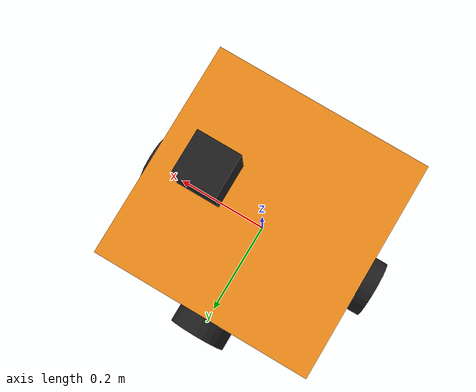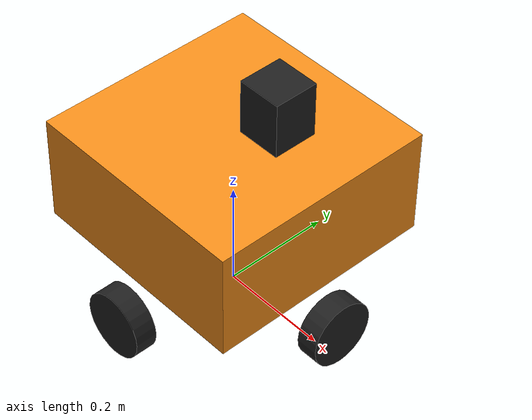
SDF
<sdf version='1.6'>
  <model name='justina_base'>
    <link name='base_link'>
      <pose frame=''>0 0 0 0 -0 0</pose>
      <inertial>
        <pose frame=''>0.002439 0 0.026585 0 -0 0</pose>
        <mass>4.1</mass>
        <inertia>
          <ixx>0.104757</ixx>
          <ixy>0</ixy>
          <ixz>-0.00413415</ixz>
          <iyy>0.105733</iyy>
          <iyz>0</iyz>
          <izz>0.148682</izz>
        </inertia>
      </inertial>
      <collision name='base_link_collision'>
        <pose frame=''>0 0 0.235 0 -0 0</pose>
        <geometry>
          <box>
            <size>0.42 0.42 0.2</size>
          </box>
        </geometry>
        <surface>
          <contact>
            <ode/>
          </contact>
          <friction>
            <ode/>
          </friction>
        </surface>
      </collision>
      <collision name='base_link_fixed_joint_lump__laser_link_collision_1'>
        <pose frame=''>0.1 0 0.44 0 -0 0</pose>
        <geometry>
          <box>
            <size>0.08 0.08 0.1</size>
          </box>
        </geometry>
        <surface>
          <contact>
            <ode/>
          </contact>
          <friction>
            <ode/>
          </friction>
        </surface>
      </collision>
      <collision name='base_link_fixed_joint_lump__wheel_back_collision_2'>
        <pose frame=''>-0.24 0 0.065 1.5708 -0 1.5708</pose>
        <geometry>
          <cylinder>
            <length>0.04</length>
            <radius>0.06</radius>
          </cylinder>
        </geometry>
        <surface>
          <contact>
            <ode/>
          </contact>
          <friction>
            <ode/>
          </friction>
        </surface>
      </collision>
      <collision name='base_link_fixed_joint_lump__wheel_front_collision_3'>
        <pose frame=''>0.24 0 0.065 1.5708 -0 1.5708</pose>
        <geometry>
          <cylinder>
            <length>0.04</length>
            <radius>0.06</radius>
          </cylinder>
        </geometry>
        <surface>
          <contact>
            <ode/>
          </contact>
          <friction>
            <ode/>
          </friction>
        </surface>
      </collision>
      <collision name='base_link_fixed_joint_lump__wheel_left_collision_4'>
        <pose frame=''>0 -0.24 0.065 1.5708 -0 0</pose>
        <geometry>
          <cylinder>
            <length>0.04</length>
            <radius>0.06</radius>
          </cylinder>
        </geometry>
        <surface>
          <contact>
            <ode/>
          </contact>
          <friction>
            <ode/>
          </friction>
        </surface>
      </collision>
      <collision name='base_link_fixed_joint_lump__wheel_right_collision_5'>
        <pose frame=''>0 0.24 0.065 1.5708 -0 0</pose>
        <geometry>
          <cylinder>
            <length>0.04</length>
            <radius>0.06</radius>
          </cylinder>
        </geometry>
        <surface>
          <contact>
            <ode/>
          </contact>
          <friction>
            <ode/>
          </friction>
        </surface>
      </collision>
      <visual name='base_link_visual'>
        <pose frame=''>0 0 0.235 0 -0 0</pose>
        <geometry>
          <box>
            <size>0.42 0.42 0.2</size>
          </box>
        </geometry>
        <material>
          <script>
            <name>Gazebo/Orange</name>
            <uri>file://media/materials/scripts/gazebo.material</uri>
          </script>
        </material>
      </visual>
      <visual name='base_link_fixed_joint_lump__laser_link_visual_1'>
        <pose frame=''>0.1 0 0.44 0 -0 0</pose>
        <geometry>
          <box>
            <size>0.08 0.08 0.1</size>
          </box>
        </geometry>
        <material>
          <script>
            <name>Gazebo/Black</name>
            <uri>file://media/materials/scripts/gazebo.material</uri>
          </script>
        </material>
      </visual>
      <visual name='base_link_fixed_joint_lump__wheel_back_visual_2'>
        <pose frame=''>-0.24 0 0.065 1.5708 -0 1.5708</pose>
        <geometry>
          <cylinder>
            <length>0.04</length>
            <radius>0.06</radius>
          </cylinder>
        </geometry>
        <material>
          <script>
            <name>Gazebo/Black</name>
            <uri>file://media/materials/scripts/gazebo.material</uri>
          </script>
        </material>
      </visual>
      <visual name='base_link_fixed_joint_lump__wheel_front_visual_3'>
        <pose frame=''>0.24 0 0.065 1.5708 -0 1.5708</pose>
        <geometry>
          <cylinder>
            <length>0.04</length>
            <radius>0.06</radius>
          </cylinder>
        </geometry>
        <material>
          <script>
            <name>Gazebo/Black</name>
            <uri>file://media/materials/scripts/gazebo.material</uri>
          </script>
        </material>
      </visual>
      <visual name='base_link_fixed_joint_lump__wheel_left_visual_4'>
        <pose frame=''>0 -0.24 0.065 1.5708 -0 0</pose>
        <geometry>
          <cylinder>
            <length>0.04</length>
            <radius>0.06</radius>
          </cylinder>
        </geometry>
        <material>
          <script>
            <name>Gazebo/Black</name>
            <uri>file://media/materials/scripts/gazebo.material</uri>
          </script>
        </material>
      </visual>
      <visual name='base_link_fixed_joint_lump__wheel_right_visual_5'>
        <pose frame=''>0 0.24 0.065 1.5708 -0 0</pose>
        <geometry>
          <cylinder>
            <length>0.04</length>
            <radius>0.06</radius>
          </cylinder>
        </geometry>
        <material>
          <script>
            <name>Gazebo/Black</name>
            <uri>file://media/materials/scripts/gazebo.material</uri>
          </script>
        </material>
      </visual>
      <velocity_decay/>
      <velocity_decay/>
      <velocity_decay/>
      <sensor name='hokuyo_sensor' type='ray'>
        <visualize>1</visualize>
        <update_rate>10</update_rate>
        <ray>
          <scan>
            <horizontal>
              <samples>370</samples>
              <resolution>0.5</resolution>
              <min_angle>-1.5708</min_angle>
              <max_angle>1.5708</max_angle>
            </horizontal>
          </scan>
          <range>
            <min>0.1</min>
            <max>10</max>
            <resolution>0.01</resolution>
          </range>
          <noise>
            <type>gaussian</type>
            <mean>0</mean>
            <stddev>0.01</stddev>
          </noise>
        </ray>
        <plugin name='gazebo_ros_hokuyo_controller' filename='libgazebo_ros_laser.so'>
          <topicName>/scan</topicName>
          <frameName>laser_link</frameName>
        </plugin>
        <pose frame=''>0.1 0 0.44 0 -0 0</pose>
      </sensor>
      <velocity_decay/>
      <velocity_decay/>
      <velocity_decay/>
      <gravity>1</gravity>
      <velocity_decay/>
    </link>
  </model>
</sdf>
